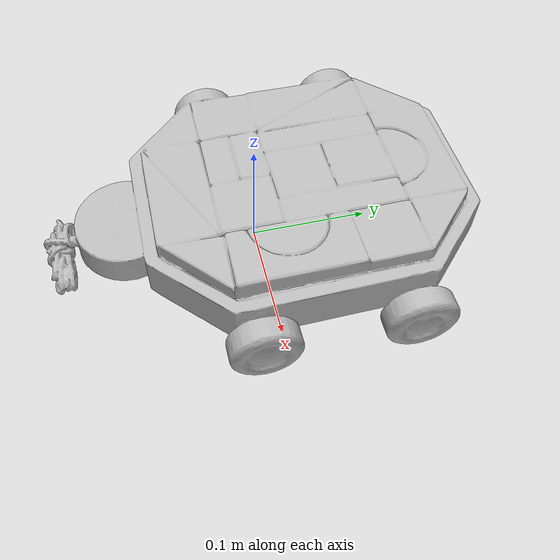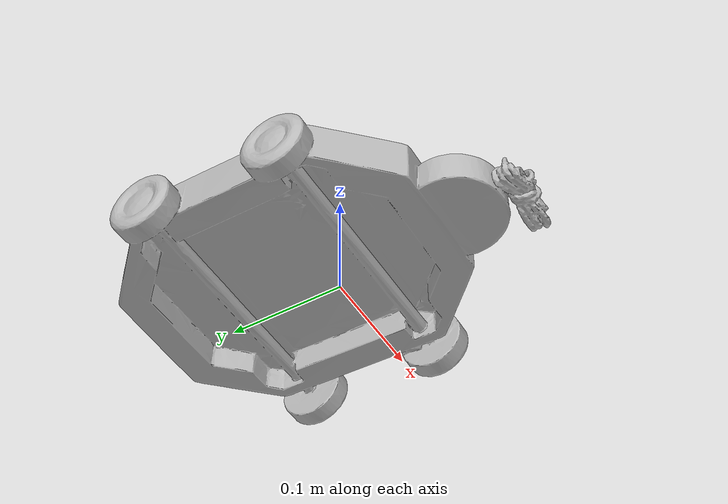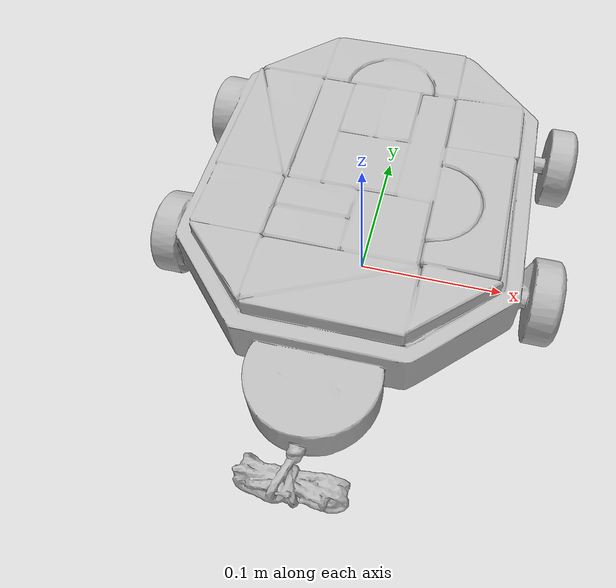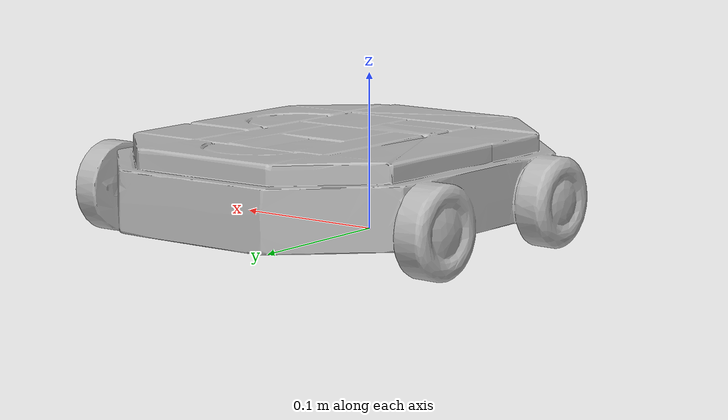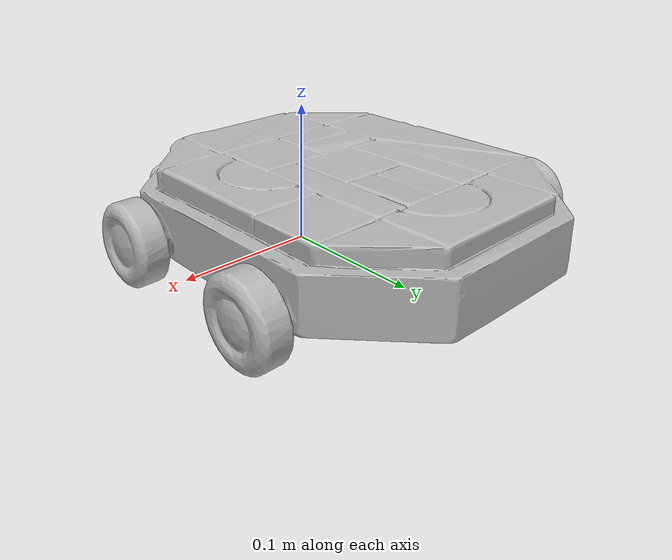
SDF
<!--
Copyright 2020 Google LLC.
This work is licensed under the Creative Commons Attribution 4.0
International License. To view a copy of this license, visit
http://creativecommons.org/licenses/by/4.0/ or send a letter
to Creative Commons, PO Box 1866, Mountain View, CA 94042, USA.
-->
<?xml version="1.0" ?>
<sdf version="1.6">
  <model name="Melissa_Doug_Cart_Turtle_Block">
    <link name="link_0">
      <visual name="visual">
        <geometry>
          <mesh>
            <uri>meshes/model.obj</uri>
          </mesh>
        </geometry>
      </visual>
      <collision name="collision_0">
        <geometry>
          <mesh>
            <uri>meshes/model.obj</uri>
          </mesh>
        </geometry>
      </collision>
    </link>
  </model>
</sdf>
